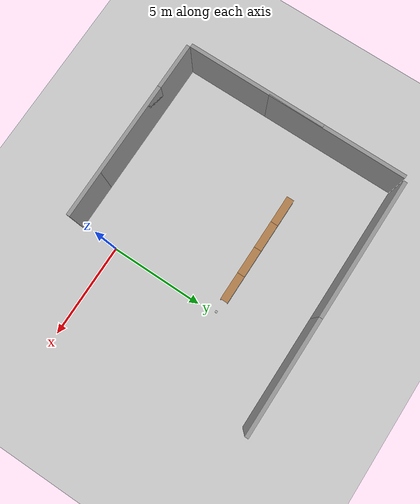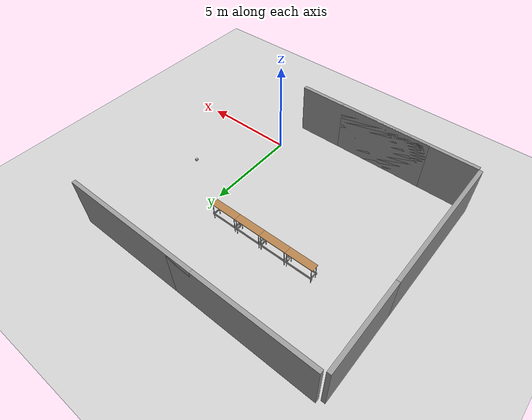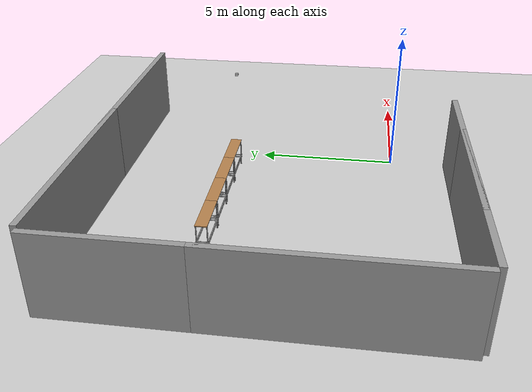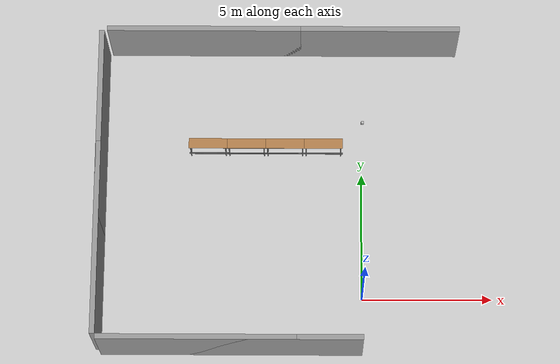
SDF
<sdf version="1.6">
 <world name="default">
  <model name="ground_plane">
   <static>1</static>
   <link name="link">
    <collision name="collision">
     <geometry><plane><normal>0 0 1</normal><size>100 100</size></plane></geometry>
     <surface>
      <contact><collide_bitmask>65535</collide_bitmask></contact>
      <friction><ode><mu>100</mu><mu2>50</mu2></ode></friction>
     </surface>
    </collision>
    <visual name="visual">
     <cast_shadows>0</cast_shadows>
     <geometry><plane><normal>0 0 1</normal><size>100 100</size></plane></geometry>
     <material>
      <script><uri>file://media/materials/scripts/gazebo.material</uri><name>Gazebo/Grey</name></script>
     </material>
    </visual>
   </link>
  </model>
  <model name="grey_wall">
   <static>1</static>
   <link name="link">
    <pose>0 0 1.4 0 -0 0</pose>
    <collision name="collision"><geometry><box><size>7.5 0.2 2.8</size></box></geometry></collision>
    <visual name="visual">
     <cast_shadows>0</cast_shadows>
     <geometry><box><size>7.5 0.2 2.8</size></box></geometry>
     <material>
      <script>
       <uri>model://grey_wall/materials/scripts</uri>
       <uri>model://grey_wall/materials/textures</uri>
       <name>vrc/grey_wall</name>
      </script>
     </material>
    </visual>
   </link>
   <pose>-3.75 -2.1 0 0 -0 0</pose>
  </model>
  <model name="grey_wall_1">
   <static>1</static>
   <link name="link">
    <pose>0 0 1.4 0 -0 0</pose>
    <collision name="collision"><geometry><box><size>7.5 0.2 2.8</size></box></geometry></collision>
    <visual name="visual">
     <cast_shadows>0</cast_shadows>
     <geometry><box><size>7.5 0.2 2.8</size></box></geometry>
     <material>
      <script>
       <uri>model://grey_wall/materials/scripts</uri>
       <uri>model://grey_wall/materials/textures</uri>
       <name>vrc/grey_wall</name>
      </script>
     </material>
    </visual>
   </link>
   <pose>-6.25 -2.1 0 0 -0 0</pose>
  </model>
  <model name="grey_wall_3">
   <static>1</static>
   <link name="link">
    <pose>0 0 1.4 0 -0 0</pose>
    <collision name="collision"><geometry><box><size>7.5 0.2 2.8</size></box></geometry></collision>
    <visual name="visual">
     <cast_shadows>0</cast_shadows>
     <geometry><box><size>7.5 0.2 2.8</size></box></geometry>
     <material>
      <script>
       <uri>model://grey_wall/materials/scripts</uri>
       <uri>model://grey_wall/materials/textures</uri>
       <name>vrc/grey_wall</name>
      </script>
     </material>
    </visual>
   </link>
   <pose>-10.1 1.75 0 0 -0 1.5708</pose>
  </model>
  <model name="grey_wall_3_clone">
   <static>1</static>
   <link name="link">
    <pose>0 0 1.4 0 -0 0</pose>
    <collision name="collision"><geometry><box><size>7.5 0.2 2.8</size></box></geometry></collision>
    <visual name="visual">
     <cast_shadows>0</cast_shadows>
     <geometry><box><size>7.5 0.2 2.8</size></box></geometry>
     <material>
      <script>
       <uri>model://grey_wall/materials/scripts</uri>
       <uri>model://grey_wall/materials/textures</uri>
       <name>vrc/grey_wall</name>
      </script>
     </material>
    </visual>
   </link>
   <pose>-10.1 6.25 0 0 -0 1.5708</pose>
  </model>
  <model name="grey_wall_1_clone">
   <static>1</static>
   <link name="link">
    <pose>0 0 1.4 0 -0 0</pose>
    <collision name="collision"><geometry><box><size>7.5 0.2 2.8</size></box></geometry></collision>
    <visual name="visual">
     <cast_shadows>0</cast_shadows>
     <geometry><box><size>7.5 0.2 2.8</size></box></geometry>
     <material>
      <script>
       <uri>model://grey_wall/materials/scripts</uri>
       <uri>model://grey_wall/materials/textures</uri>
       <name>vrc/grey_wall</name>
      </script>
     </material>
    </visual>
   </link>
   <pose>-6.15 10.1 0 0 -0 0</pose>
  </model>
  <model name="grey_wall_clone">
   <static>1</static>
   <link name="link">
    <pose>0 0 1.4 0 -0 0</pose>
    <collision name="collision"><geometry><box><size>7.5 0.2 2.8</size></box></geometry></collision>
    <visual name="visual">
     <cast_shadows>0</cast_shadows>
     <geometry><box><size>7.5 0.2 2.8</size></box></geometry>
     <material>
      <script>
       <uri>model://grey_wall/materials/scripts</uri>
       <uri>model://grey_wall/materials/textures</uri>
       <name>vrc/grey_wall</name>
      </script>
     </material>
    </visual>
   </link>
   <pose>0 10.1 0 0 -0 0</pose>
  </model>
  <model name="distorted_camera">
   <link name="link">
    <pose>0.05 0.05 0.05 0 -0 0</pose>
    <inertial>
     <mass>0.1</mass>
     <inertia>
      <ixx>0.000166667</ixx>
      <iyy>0.000166667</iyy>
      <izz>0.000166667</izz>
      <ixy>0</ixy>
      <ixz>0</ixz>
      <iyz>0</iyz>
     </inertia>
    </inertial>
    <collision name="collision"><geometry><box><size>0.1 0.1 0.1</size></box></geometry></collision>
    <visual name="visual"><geometry><box><size>0.1 0.1 0.1</size></box></geometry></visual>
    <gravity>0</gravity>
    <sensor name="camera" type="camera">
     <camera name="__default__">
      <horizontal_fov>1.047</horizontal_fov>
      <image><width>64</width><height>64</height></image>
      <clip><near>0.1</near><far>100</far></clip>
     </camera>
     <plugin name="camera_controller" filename="libgazebo_ros_camera.so">
      <alwaysOn>1</alwaysOn>
      <updateRate>0.0</updateRate>
      <cameraName>top_down_cam</cameraName>
      <imageTopicName>image_raw</imageTopicName>
      <cameraInfoTopicName>camera_info</cameraInfoTopicName>
      <frameName>camera_link</frameName>
      <hackBaseline>0.07</hackBaseline>
      <distortionK1>0.0</distortionK1>
      <distortionK2>0.0</distortionK2>
      <distortionK3>0.0</distortionK3>
      <distortionT1>0.0</distortionT1>
      <distortionT2>0.0</distortionT2>
     </plugin>
     <always_on>1</always_on>
     <update_rate>30</update_rate>
     <visualize>1</visualize>
    </sensor>
   </link>
   <pose>0 6 3.46489 0 1.57 1.57</pose>
  </model>
  <model name="table_3">
   <static>1</static>
   <link name="link">
    <collision name="surface">
     <pose>0 0 1 0 -0 0</pose>
     <geometry><box><size>1.5 0.4 0.03</size></box></geometry>
     <surface><friction><ode><mu>0.6</mu><mu2>0.6</mu2></ode></friction></surface>
    </collision>
    <visual name="visual1">
     <pose>0 0 1 0 -0 0</pose>
     <geometry><box><size>1.5 0.4 0.03</size></box></geometry>
     <material>
      <script><uri>file://media/materials/scripts/gazebo.material</uri><name>Gazebo/Wood</name></script>
     </material>
    </visual>
    <collision name="front_left_leg">
     <pose>0.68 0.18 0.5 0 -0 0</pose>
     <geometry><cylinder><radius>0.02</radius><length>1</length></cylinder></geometry>
    </collision>
    <visual name="front_left_leg">
     <pose>0.68 0.18 0.5 0 -0 0</pose>
     <geometry><cylinder><radius>0.02</radius><length>1</length></cylinder></geometry>
     <material>
      <script><uri>file://media/materials/scripts/gazebo.material</uri><name>Gazebo/Grey</name></script>
     </material>
    </visual>
    <collision name="front_right_leg">
     <pose>0.68 -0.18 0.5 0 -0 0</pose>
     <geometry><cylinder><radius>0.02</radius><length>1</length></cylinder></geometry>
    </collision>
    <visual name="front_right_leg">
     <pose>0.68 -0.18 0.5 0 -0 0</pose>
     <geometry><cylinder><radius>0.02</radius><length>1</length></cylinder></geometry>
     <material>
      <script><uri>file://media/materials/scripts/gazebo.material</uri><name>Gazebo/Grey</name></script>
     </material>
    </visual>
    <collision name="back_right_leg">
     <pose>-0.68 -0.18 0.5 0 -0 0</pose>
     <geometry><cylinder><radius>0.02</radius><length>1</length></cylinder></geometry>
    </collision>
    <visual name="back_right_leg">
     <pose>-0.68 -0.18 0.5 0 -0 0</pose>
     <geometry><cylinder><radius>0.02</radius><length>1</length></cylinder></geometry>
     <material>
      <script><uri>file://media/materials/scripts/gazebo.material</uri><name>Gazebo/Grey</name></script>
     </material>
    </visual>
    <collision name="back_left_leg">
     <pose>-0.68 0.18 0.5 0 -0 0</pose>
     <geometry><cylinder><radius>0.02</radius><length>1</length></cylinder></geometry>
    </collision>
    <visual name="back_left_leg">
     <pose>-0.68 0.18 0.5 0 -0 0</pose>
     <geometry><cylinder><radius>0.02</radius><length>1</length></cylinder></geometry>
     <material>
      <script><uri>file://media/materials/scripts/gazebo.material</uri><name>Gazebo/Grey</name></script>
     </material>
    </visual>
    <collision name="back_leg_connector">
     <pose>0 -0.19 0.38 0 1.57 0</pose>
     <geometry><cylinder><radius>0.02</radius><length>1.5</length></cylinder></geometry>
    </collision>
    <visual name="back_leg_connector">
     <pose>0 -0.19 0.38 0 1.57 0</pose>
     <geometry><cylinder><radius>0.02</radius><length>1.5</length></cylinder></geometry>
     <material>
      <script><uri>file://media/materials/scripts/gazebo.material</uri><name>Gazebo/Grey</name></script>
     </material>
    </visual>
    <collision name="front_leg_connector">
     <pose>0 0.19 0.38 0 1.57 0</pose>
     <geometry><cylinder><radius>0.02</radius><length>1.5</length></cylinder></geometry>
    </collision>
    <visual name="front_leg_connector">
     <pose>0 0.19 0.38 0 1.57 0</pose>
     <geometry><cylinder><radius>0.02</radius><length>1.5</length></cylinder></geometry>
     <material>
      <script><uri>file://media/materials/scripts/gazebo.material</uri><name>Gazebo/Grey</name></script>
     </material>
    </visual>
    <collision name="right_leg_connector">
     <pose>-0.68 0 0.38 0 1.57 1.57</pose>
     <geometry><cylinder><radius>0.02</radius><length>0.36</length></cylinder></geometry>
    </collision>
    <visual name="right_leg_connector">
     <pose>-0.68 0 0.38 0 1.57 1.57</pose>
     <geometry><cylinder><radius>0.02</radius><length>0.36</length></cylinder></geometry>
     <material>
      <script><uri>file://media/materials/scripts/gazebo.material</uri><name>Gazebo/Grey</name></script>
     </material>
    </visual>
    <collision name="left_leg_connector">
     <pose>0.68 0 0.38 0 1.57 1.57</pose>
     <geometry><cylinder><radius>0.02</radius><length>0.36</length></cylinder></geometry>
    </collision>
    <visual name="left_leg_connector">
     <pose>0.68 0 0.38 0 1.57 1.57</pose>
     <geometry><cylinder><radius>0.02</radius><length>0.36</length></cylinder></geometry>
     <material>
      <script><uri>file://media/materials/scripts/gazebo.material</uri><name>Gazebo/Grey</name></script>
     </material>
    </visual>
    <collision name="back_leg_connector1">
     <pose>0 -0.19 0.3 0 1.57 0</pose>
     <geometry><cylinder><radius>0.02</radius><length>1.5</length></cylinder></geometry>
    </collision>
    <visual name="back_leg_connector1">
     <pose>0 -0.19 0.3 0 1.57 0</pose>
     <geometry><cylinder><radius>0.02</radius><length>1.5</length></cylinder></geometry>
     <material>
      <script><uri>file://media/materials/scripts/gazebo.material</uri><name>Gazebo/Grey</name></script>
     </material>
    </visual>
    <collision name="front_leg_connector1">
     <pose>0 0.19 0.3 0 1.57 0</pose>
     <geometry><cylinder><radius>0.02</radius><length>1.5</length></cylinder></geometry>
    </collision>
    <visual name="front_leg_connector1">
     <pose>0 0.19 0.3 0 1.57 0</pose>
     <geometry><cylinder><radius>0.02</radius><length>1.5</length></cylinder></geometry>
     <material>
      <script><uri>file://media/materials/scripts/gazebo.material</uri><name>Gazebo/Grey</name></script>
     </material>
    </visual>
    <collision name="right_leg_connector1">
     <pose>-0.68 0 0.3 0 1.57 1.57</pose>
     <geometry><cylinder><radius>0.02</radius><length>0.36</length></cylinder></geometry>
    </collision>
    <visual name="right_leg_connector1">
     <pose>-0.68 0 0.3 0 1.57 1.57</pose>
     <geometry><cylinder><radius>0.02</radius><length>0.36</length></cylinder></geometry>
     <material>
      <script><uri>file://media/materials/scripts/gazebo.material</uri><name>Gazebo/Grey</name></script>
     </material>
    </visual>
    <collision name="left_leg_connector1">
     <pose>0.68 0 0.3 0 1.57 1.57</pose>
     <geometry><cylinder><radius>0.02</radius><length>0.36</length></cylinder></geometry>
    </collision>
    <visual name="left_leg_connector1">
     <pose>0.68 0 0.3 0 1.57 1.57</pose>
     <geometry><cylinder><radius>0.02</radius><length>0.36</length></cylinder></geometry>
     <material>
      <script><uri>file://media/materials/scripts/gazebo.material</uri><name>Gazebo/Grey</name></script>
     </material>
    </visual>
   </link>
   <pose>-1.5 6 0 0 -0 0</pose>
  </model>
  <model name="table_2">
   <static>1</static>
   <link name="link">
    <collision name="surface">
     <pose>0 0 1 0 -0 0</pose>
     <geometry><box><size>1.5 0.4 0.03</size></box></geometry>
     <surface><friction><ode><mu>0.6</mu><mu2>0.6</mu2></ode></friction></surface>
    </collision>
    <visual name="visual1">
     <pose>0 0 1 0 -0 0</pose>
     <geometry><box><size>1.5 0.4 0.03</size></box></geometry>
     <material>
      <script><uri>file://media/materials/scripts/gazebo.material</uri><name>Gazebo/Wood</name></script>
     </material>
    </visual>
    <collision name="front_left_leg">
     <pose>0.68 0.18 0.5 0 -0 0</pose>
     <geometry><cylinder><radius>0.02</radius><length>1</length></cylinder></geometry>
    </collision>
    <visual name="front_left_leg">
     <pose>0.68 0.18 0.5 0 -0 0</pose>
     <geometry><cylinder><radius>0.02</radius><length>1</length></cylinder></geometry>
     <material>
      <script><uri>file://media/materials/scripts/gazebo.material</uri><name>Gazebo/Grey</name></script>
     </material>
    </visual>
    <collision name="front_right_leg">
     <pose>0.68 -0.18 0.5 0 -0 0</pose>
     <geometry><cylinder><radius>0.02</radius><length>1</length></cylinder></geometry>
    </collision>
    <visual name="front_right_leg">
     <pose>0.68 -0.18 0.5 0 -0 0</pose>
     <geometry><cylinder><radius>0.02</radius><length>1</length></cylinder></geometry>
     <material>
      <script><uri>file://media/materials/scripts/gazebo.material</uri><name>Gazebo/Grey</name></script>
     </material>
    </visual>
    <collision name="back_right_leg">
     <pose>-0.68 -0.18 0.5 0 -0 0</pose>
     <geometry><cylinder><radius>0.02</radius><length>1</length></cylinder></geometry>
    </collision>
    <visual name="back_right_leg">
     <pose>-0.68 -0.18 0.5 0 -0 0</pose>
     <geometry><cylinder><radius>0.02</radius><length>1</length></cylinder></geometry>
     <material>
      <script><uri>file://media/materials/scripts/gazebo.material</uri><name>Gazebo/Grey</name></script>
     </material>
    </visual>
    <collision name="back_left_leg">
     <pose>-0.68 0.18 0.5 0 -0 0</pose>
     <geometry><cylinder><radius>0.02</radius><length>1</length></cylinder></geometry>
    </collision>
    <visual name="back_left_leg">
     <pose>-0.68 0.18 0.5 0 -0 0</pose>
     <geometry><cylinder><radius>0.02</radius><length>1</length></cylinder></geometry>
     <material>
      <script><uri>file://media/materials/scripts/gazebo.material</uri><name>Gazebo/Grey</name></script>
     </material>
    </visual>
    <collision name="back_leg_connector">
     <pose>0 -0.19 0.38 0 1.57 0</pose>
     <geometry><cylinder><radius>0.02</radius><length>1.5</length></cylinder></geometry>
    </collision>
    <visual name="back_leg_connector">
     <pose>0 -0.19 0.38 0 1.57 0</pose>
     <geometry><cylinder><radius>0.02</radius><length>1.5</length></cylinder></geometry>
     <material>
      <script><uri>file://media/materials/scripts/gazebo.material</uri><name>Gazebo/Grey</name></script>
     </material>
    </visual>
    <collision name="front_leg_connector">
     <pose>0 0.19 0.38 0 1.57 0</pose>
     <geometry><cylinder><radius>0.02</radius><length>1.5</length></cylinder></geometry>
    </collision>
    <visual name="front_leg_connector">
     <pose>0 0.19 0.38 0 1.57 0</pose>
     <geometry><cylinder><radius>0.02</radius><length>1.5</length></cylinder></geometry>
     <material>
      <script><uri>file://media/materials/scripts/gazebo.material</uri><name>Gazebo/Grey</name></script>
     </material>
    </visual>
    <collision name="right_leg_connector">
     <pose>-0.68 0 0.38 0 1.57 1.57</pose>
     <geometry><cylinder><radius>0.02</radius><length>0.36</length></cylinder></geometry>
    </collision>
    <visual name="right_leg_connector">
     <pose>-0.68 0 0.38 0 1.57 1.57</pose>
     <geometry><cylinder><radius>0.02</radius><length>0.36</length></cylinder></geometry>
     <material>
      <script><uri>file://media/materials/scripts/gazebo.material</uri><name>Gazebo/Grey</name></script>
     </material>
    </visual>
    <collision name="left_leg_connector">
     <pose>0.68 0 0.38 0 1.57 1.57</pose>
     <geometry><cylinder><radius>0.02</radius><length>0.36</length></cylinder></geometry>
    </collision>
    <visual name="left_leg_connector">
     <pose>0.68 0 0.38 0 1.57 1.57</pose>
     <geometry><cylinder><radius>0.02</radius><length>0.36</length></cylinder></geometry>
     <material>
      <script><uri>file://media/materials/scripts/gazebo.material</uri><name>Gazebo/Grey</name></script>
     </material>
    </visual>
    <collision name="back_leg_connector1">
     <pose>0 -0.19 0.3 0 1.57 0</pose>
     <geometry><cylinder><radius>0.02</radius><length>1.5</length></cylinder></geometry>
    </collision>
    <visual name="back_leg_connector1">
     <pose>0 -0.19 0.3 0 1.57 0</pose>
     <geometry><cylinder><radius>0.02</radius><length>1.5</length></cylinder></geometry>
     <material>
      <script><uri>file://media/materials/scripts/gazebo.material</uri><name>Gazebo/Grey</name></script>
     </material>
    </visual>
    <collision name="front_leg_connector1">
     <pose>0 0.19 0.3 0 1.57 0</pose>
     <geometry><cylinder><radius>0.02</radius><length>1.5</length></cylinder></geometry>
    </collision>
    <visual name="front_leg_connector1">
     <pose>0 0.19 0.3 0 1.57 0</pose>
     <geometry><cylinder><radius>0.02</radius><length>1.5</length></cylinder></geometry>
     <material>
      <script><uri>file://media/materials/scripts/gazebo.material</uri><name>Gazebo/Grey</name></script>
     </material>
    </visual>
    <collision name="right_leg_connector1">
     <pose>-0.68 0 0.3 0 1.57 1.57</pose>
     <geometry><cylinder><radius>0.02</radius><length>0.36</length></cylinder></geometry>
    </collision>
    <visual name="right_leg_connector1">
     <pose>-0.68 0 0.3 0 1.57 1.57</pose>
     <geometry><cylinder><radius>0.02</radius><length>0.36</length></cylinder></geometry>
     <material>
      <script><uri>file://media/materials/scripts/gazebo.material</uri><name>Gazebo/Grey</name></script>
     </material>
    </visual>
    <collision name="left_leg_connector1">
     <pose>0.68 0 0.3 0 1.57 1.57</pose>
     <geometry><cylinder><radius>0.02</radius><length>0.36</length></cylinder></geometry>
    </collision>
    <visual name="left_leg_connector1">
     <pose>0.68 0 0.3 0 1.57 1.57</pose>
     <geometry><cylinder><radius>0.02</radius><length>0.36</length></cylinder></geometry>
     <material>
      <script><uri>file://media/materials/scripts/gazebo.material</uri><name>Gazebo/Grey</name></script>
     </material>
    </visual>
   </link>
   <pose>-3 6 0 0 -0 0</pose>
  </model>
  <model name="table_1">
   <static>1</static>
   <link name="link">
    <collision name="surface">
     <pose>0 0 1 0 -0 0</pose>
     <geometry><box><size>1.5 0.4 0.03</size></box></geometry>
     <surface><friction><ode><mu>0.6</mu><mu2>0.6</mu2></ode></friction></surface>
    </collision>
    <visual name="visual1">
     <pose>0 0 1 0 -0 0</pose>
     <geometry><box><size>1.5 0.4 0.03</size></box></geometry>
     <material>
      <script><uri>file://media/materials/scripts/gazebo.material</uri><name>Gazebo/Wood</name></script>
     </material>
    </visual>
    <collision name="front_left_leg">
     <pose>0.68 0.18 0.5 0 -0 0</pose>
     <geometry><cylinder><radius>0.02</radius><length>1</length></cylinder></geometry>
    </collision>
    <visual name="front_left_leg">
     <pose>0.68 0.18 0.5 0 -0 0</pose>
     <geometry><cylinder><radius>0.02</radius><length>1</length></cylinder></geometry>
     <material>
      <script><uri>file://media/materials/scripts/gazebo.material</uri><name>Gazebo/Grey</name></script>
     </material>
    </visual>
    <collision name="front_right_leg">
     <pose>0.68 -0.18 0.5 0 -0 0</pose>
     <geometry><cylinder><radius>0.02</radius><length>1</length></cylinder></geometry>
    </collision>
    <visual name="front_right_leg">
     <pose>0.68 -0.18 0.5 0 -0 0</pose>
     <geometry><cylinder><radius>0.02</radius><length>1</length></cylinder></geometry>
     <material>
      <script><uri>file://media/materials/scripts/gazebo.material</uri><name>Gazebo/Grey</name></script>
     </material>
    </visual>
    <collision name="back_right_leg">
     <pose>-0.68 -0.18 0.5 0 -0 0</pose>
     <geometry><cylinder><radius>0.02</radius><length>1</length></cylinder></geometry>
    </collision>
    <visual name="back_right_leg">
     <pose>-0.68 -0.18 0.5 0 -0 0</pose>
     <geometry><cylinder><radius>0.02</radius><length>1</length></cylinder></geometry>
     <material>
      <script><uri>file://media/materials/scripts/gazebo.material</uri><name>Gazebo/Grey</name></script>
     </material>
    </visual>
    <collision name="back_left_leg">
     <pose>-0.68 0.18 0.5 0 -0 0</pose>
     <geometry><cylinder><radius>0.02</radius><length>1</length></cylinder></geometry>
    </collision>
    <visual name="back_left_leg">
     <pose>-0.68 0.18 0.5 0 -0 0</pose>
     <geometry><cylinder><radius>0.02</radius><length>1</length></cylinder></geometry>
     <material>
      <script><uri>file://media/materials/scripts/gazebo.material</uri><name>Gazebo/Grey</name></script>
     </material>
    </visual>
    <collision name="back_leg_connector">
     <pose>0 -0.19 0.38 0 1.57 0</pose>
     <geometry><cylinder><radius>0.02</radius><length>1.5</length></cylinder></geometry>
    </collision>
    <visual name="back_leg_connector">
     <pose>0 -0.19 0.38 0 1.57 0</pose>
     <geometry><cylinder><radius>0.02</radius><length>1.5</length></cylinder></geometry>
     <material>
      <script><uri>file://media/materials/scripts/gazebo.material</uri><name>Gazebo/Grey</name></script>
     </material>
    </visual>
    <collision name="front_leg_connector">
     <pose>0 0.19 0.38 0 1.57 0</pose>
     <geometry><cylinder><radius>0.02</radius><length>1.5</length></cylinder></geometry>
    </collision>
    <visual name="front_leg_connector">
     <pose>0 0.19 0.38 0 1.57 0</pose>
     <geometry><cylinder><radius>0.02</radius><length>1.5</length></cylinder></geometry>
     <material>
      <script><uri>file://media/materials/scripts/gazebo.material</uri><name>Gazebo/Grey</name></script>
     </material>
    </visual>
    <collision name="right_leg_connector">
     <pose>-0.68 0 0.38 0 1.57 1.57</pose>
     <geometry><cylinder><radius>0.02</radius><length>0.36</length></cylinder></geometry>
    </collision>
    <visual name="right_leg_connector">
     <pose>-0.68 0 0.38 0 1.57 1.57</pose>
     <geometry><cylinder><radius>0.02</radius><length>0.36</length></cylinder></geometry>
     <material>
      <script><uri>file://media/materials/scripts/gazebo.material</uri><name>Gazebo/Grey</name></script>
     </material>
    </visual>
    <collision name="left_leg_connector">
     <pose>0.68 0 0.38 0 1.57 1.57</pose>
     <geometry><cylinder><radius>0.02</radius><length>0.36</length></cylinder></geometry>
    </collision>
    <visual name="left_leg_connector">
     <pose>0.68 0 0.38 0 1.57 1.57</pose>
     <geometry><cylinder><radius>0.02</radius><length>0.36</length></cylinder></geometry>
     <material>
      <script><uri>file://media/materials/scripts/gazebo.material</uri><name>Gazebo/Grey</name></script>
     </material>
    </visual>
    <collision name="back_leg_connector1">
     <pose>0 -0.19 0.3 0 1.57 0</pose>
     <geometry><cylinder><radius>0.02</radius><length>1.5</length></cylinder></geometry>
    </collision>
    <visual name="back_leg_connector1">
     <pose>0 -0.19 0.3 0 1.57 0</pose>
     <geometry><cylinder><radius>0.02</radius><length>1.5</length></cylinder></geometry>
     <material>
      <script><uri>file://media/materials/scripts/gazebo.material</uri><name>Gazebo/Grey</name></script>
     </material>
    </visual>
    <collision name="front_leg_connector1">
     <pose>0 0.19 0.3 0 1.57 0</pose>
     <geometry><cylinder><radius>0.02</radius><length>1.5</length></cylinder></geometry>
    </collision>
    <visual name="front_leg_connector1">
     <pose>0 0.19 0.3 0 1.57 0</pose>
     <geometry><cylinder><radius>0.02</radius><length>1.5</length></cylinder></geometry>
     <material>
      <script><uri>file://media/materials/scripts/gazebo.material</uri><name>Gazebo/Grey</name></script>
     </material>
    </visual>
    <collision name="right_leg_connector1">
     <pose>-0.68 0 0.3 0 1.57 1.57</pose>
     <geometry><cylinder><radius>0.02</radius><length>0.36</length></cylinder></geometry>
    </collision>
    <visual name="right_leg_connector1">
     <pose>-0.68 0 0.3 0 1.57 1.57</pose>
     <geometry><cylinder><radius>0.02</radius><length>0.36</length></cylinder></geometry>
     <material>
      <script><uri>file://media/materials/scripts/gazebo.material</uri><name>Gazebo/Grey</name></script>
     </material>
    </visual>
    <collision name="left_leg_connector1">
     <pose>0.68 0 0.3 0 1.57 1.57</pose>
     <geometry><cylinder><radius>0.02</radius><length>0.36</length></cylinder></geometry>
    </collision>
    <visual name="left_leg_connector1">
     <pose>0.68 0 0.3 0 1.57 1.57</pose>
     <geometry><cylinder><radius>0.02</radius><length>0.36</length></cylinder></geometry>
     <material>
      <script><uri>file://media/materials/scripts/gazebo.material</uri><name>Gazebo/Grey</name></script>
     </material>
    </visual>
   </link>
   <pose>-4.5 6 0 0 -0 0</pose>
  </model>
  <model name="table_0">
   <static>1</static>
   <link name="link">
    <collision name="surface">
     <pose>0 0 1 0 -0 0</pose>
     <geometry><box><size>1.5 0.4 0.03</size></box></geometry>
     <surface><friction><ode><mu>0.6</mu><mu2>0.6</mu2></ode></friction></surface>
    </collision>
    <visual name="visual1">
     <pose>0 0 1 0 -0 0</pose>
     <geometry><box><size>1.5 0.4 0.03</size></box></geometry>
     <material>
      <script><uri>file://media/materials/scripts/gazebo.material</uri><name>Gazebo/Wood</name></script>
     </material>
    </visual>
    <collision name="front_left_leg">
     <pose>0.68 0.18 0.5 0 -0 0</pose>
     <geometry><cylinder><radius>0.02</radius><length>1</length></cylinder></geometry>
    </collision>
    <visual name="front_left_leg">
     <pose>0.68 0.18 0.5 0 -0 0</pose>
     <geometry><cylinder><radius>0.02</radius><length>1</length></cylinder></geometry>
     <material>
      <script><uri>file://media/materials/scripts/gazebo.material</uri><name>Gazebo/Grey</name></script>
     </material>
    </visual>
    <collision name="front_right_leg">
     <pose>0.68 -0.18 0.5 0 -0 0</pose>
     <geometry><cylinder><radius>0.02</radius><length>1</length></cylinder></geometry>
    </collision>
    <visual name="front_right_leg">
     <pose>0.68 -0.18 0.5 0 -0 0</pose>
     <geometry><cylinder><radius>0.02</radius><length>1</length></cylinder></geometry>
     <material>
      <script><uri>file://media/materials/scripts/gazebo.material</uri><name>Gazebo/Grey</name></script>
     </material>
    </visual>
    <collision name="back_right_leg">
     <pose>-0.68 -0.18 0.5 0 -0 0</pose>
     <geometry><cylinder><radius>0.02</radius><length>1</length></cylinder></geometry>
    </collision>
    <visual name="back_right_leg">
     <pose>-0.68 -0.18 0.5 0 -0 0</pose>
     <geometry><cylinder><radius>0.02</radius><length>1</length></cylinder></geometry>
     <material>
      <script><uri>file://media/materials/scripts/gazebo.material</uri><name>Gazebo/Grey</name></script>
     </material>
    </visual>
    <collision name="back_left_leg">
     <pose>-0.68 0.18 0.5 0 -0 0</pose>
     <geometry><cylinder><radius>0.02</radius><length>1</length></cylinder></geometry>
    </collision>
    <visual name="back_left_leg">
     <pose>-0.68 0.18 0.5 0 -0 0</pose>
     <geometry><cylinder><radius>0.02</radius><length>1</length></cylinder></geometry>
     <material>
      <script><uri>file://media/materials/scripts/gazebo.material</uri><name>Gazebo/Grey</name></script>
     </material>
    </visual>
    <collision name="back_leg_connector">
     <pose>0 -0.19 0.38 0 1.57 0</pose>
     <geometry><cylinder><radius>0.02</radius><length>1.5</length></cylinder></geometry>
    </collision>
    <visual name="back_leg_connector">
     <pose>0 -0.19 0.38 0 1.57 0</pose>
     <geometry><cylinder><radius>0.02</radius><length>1.5</length></cylinder></geometry>
     <material>
      <script><uri>file://media/materials/scripts/gazebo.material</uri><name>Gazebo/Grey</name></script>
     </material>
    </visual>
    <collision name="front_leg_connector">
     <pose>0 0.19 0.38 0 1.57 0</pose>
     <geometry><cylinder><radius>0.02</radius><length>1.5</length></cylinder></geometry>
    </collision>
    <visual name="front_leg_connector">
     <pose>0 0.19 0.38 0 1.57 0</pose>
     <geometry><cylinder><radius>0.02</radius><length>1.5</length></cylinder></geometry>
     <material>
      <script><uri>file://media/materials/scripts/gazebo.material</uri><name>Gazebo/Grey</name></script>
     </material>
    </visual>
    <collision name="right_leg_connector">
     <pose>-0.68 0 0.38 0 1.57 1.57</pose>
     <geometry><cylinder><radius>0.02</radius><length>0.36</length></cylinder></geometry>
    </collision>
    <visual name="right_leg_connector">
     <pose>-0.68 0 0.38 0 1.57 1.57</pose>
     <geometry><cylinder><radius>0.02</radius><length>0.36</length></cylinder></geometry>
     <material>
      <script><uri>file://media/materials/scripts/gazebo.material</uri><name>Gazebo/Grey</name></script>
     </material>
    </visual>
    <collision name="left_leg_connector">
     <pose>0.68 0 0.38 0 1.57 1.57</pose>
     <geometry><cylinder><radius>0.02</radius><length>0.36</length></cylinder></geometry>
    </collision>
    <visual name="left_leg_connector">
     <pose>0.68 0 0.38 0 1.57 1.57</pose>
     <geometry><cylinder><radius>0.02</radius><length>0.36</length></cylinder></geometry>
     <material>
      <script><uri>file://media/materials/scripts/gazebo.material</uri><name>Gazebo/Grey</name></script>
     </material>
    </visual>
    <collision name="back_leg_connector1">
     <pose>0 -0.19 0.3 0 1.57 0</pose>
     <geometry><cylinder><radius>0.02</radius><length>1.5</length></cylinder></geometry>
    </collision>
    <visual name="back_leg_connector1">
     <pose>0 -0.19 0.3 0 1.57 0</pose>
     <geometry><cylinder><radius>0.02</radius><length>1.5</length></cylinder></geometry>
     <material>
      <script><uri>file://media/materials/scripts/gazebo.material</uri><name>Gazebo/Grey</name></script>
     </material>
    </visual>
    <collision name="front_leg_connector1">
     <pose>0 0.19 0.3 0 1.57 0</pose>
     <geometry><cylinder><radius>0.02</radius><length>1.5</length></cylinder></geometry>
    </collision>
    <visual name="front_leg_connector1">
     <pose>0 0.19 0.3 0 1.57 0</pose>
     <geometry><cylinder><radius>0.02</radius><length>1.5</length></cylinder></geometry>
     <material>
      <script><uri>file://media/materials/scripts/gazebo.material</uri><name>Gazebo/Grey</name></script>
     </material>
    </visual>
    <collision name="right_leg_connector1">
     <pose>-0.68 0 0.3 0 1.57 1.57</pose>
     <geometry><cylinder><radius>0.02</radius><length>0.36</length></cylinder></geometry>
    </collision>
    <visual name="right_leg_connector1">
     <pose>-0.68 0 0.3 0 1.57 1.57</pose>
     <geometry><cylinder><radius>0.02</radius><length>0.36</length></cylinder></geometry>
     <material>
      <script><uri>file://media/materials/scripts/gazebo.material</uri><name>Gazebo/Grey</name></script>
     </material>
    </visual>
    <collision name="left_leg_connector1">
     <pose>0.68 0 0.3 0 1.57 1.57</pose>
     <geometry><cylinder><radius>0.02</radius><length>0.36</length></cylinder></geometry>
    </collision>
    <visual name="left_leg_connector1">
     <pose>0.68 0 0.3 0 1.57 1.57</pose>
     <geometry><cylinder><radius>0.02</radius><length>0.36</length></cylinder></geometry>
     <material>
      <script><uri>file://media/materials/scripts/gazebo.material</uri><name>Gazebo/Grey</name></script>
     </material>
    </visual>
   </link>
   <pose>-6 6 0 0 -0 0</pose>
  </model>
 </world>
</sdf>
